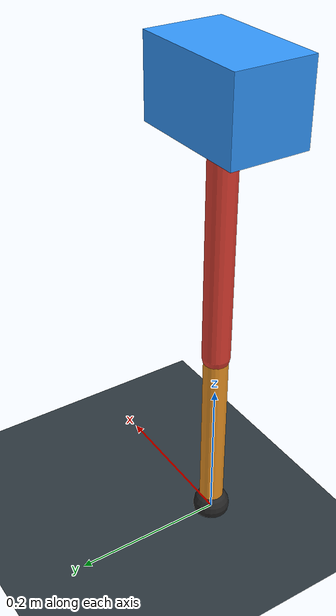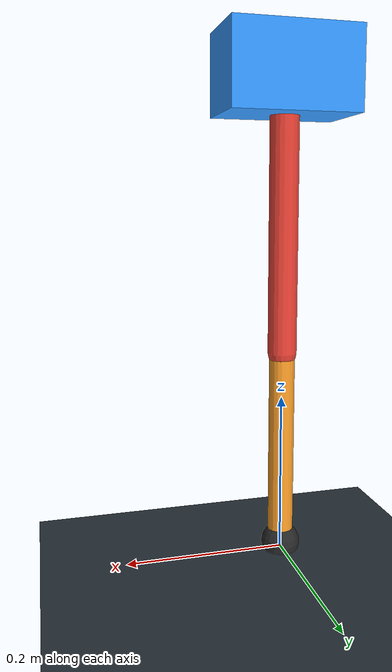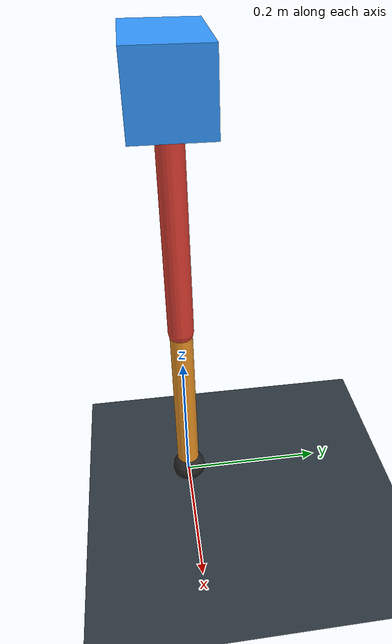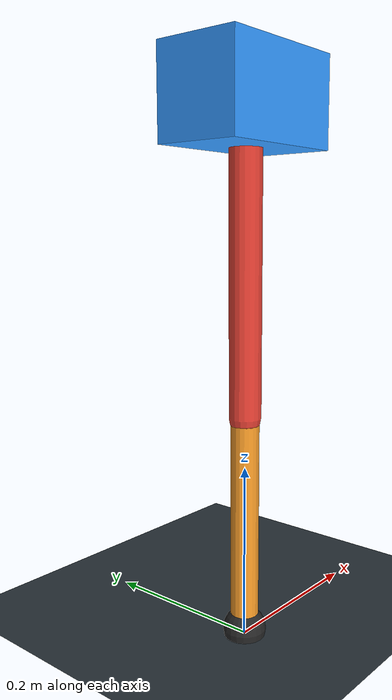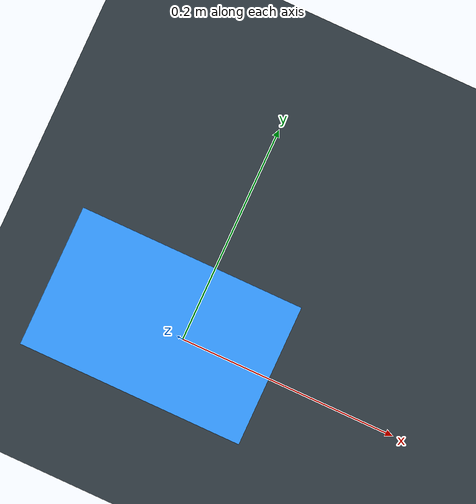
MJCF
<mujoco model="single_axis_two_bar">
  <compiler angle="radian" inertiafromgeom="true"/>
  <option timestep="0.001" integrator="implicitfast" gravity="0 0 -9.81"/>
  <default>
    <joint damping="0.08"/>
    <geom friction="1.2 0.01 0.0001" condim="3"/>
  </default>
  <worldbody>
    <geom name="floor" type="plane" size="5 5 0.1" rgba="0.18 0.22 0.25 1"/>
    <body name="carriage" pos="0 0 0.5984814071651181">
      <joint name="pole_slide" type="slide" axis="0 0 1"/>
      <geom name="payload" type="box" size="0.08 0.05 0.05" mass="3.7129781774827557" rgba="0.2 0.6 1 1"/>
      <body name="thigh" pos="0 0 0">
        <joint name="hip" type="hinge" axis="0 1 0"/>
        <geom name="thigh_link" type="capsule" fromto="0 0 0 0 0 -0.3407944015719086" size="0.018" mass="0.2428205143206916" rgba="0.9 0.25 0.2 1"/>
        <body name="shank" pos="0 0 -0.3407944015719086">
          <joint name="knee" type="hinge" axis="0 1 0"/>
          <geom name="shank_link" type="capsule" fromto="0 0 0 0 0 -0.2504235439591409" size="0.016" mass="0.17843008412606878" rgba="0.95 0.6 0.15 1"/>
          <geom name="foot" type="sphere" pos="0 0 -0.2504235439591409" size="0.025" mass="0.03" rgba="0.15 0.15 0.15 1"/>
          <site name="toe" pos="0 0 -0.2504235439591409" size="0.008"/>
        </body>
      </body>
    </body>
  </worldbody>
  <actuator>
    <motor name="hip_motor" joint="hip" ctrlrange="-40.13076517327354 40.13076517327354"/>
    <motor name="knee_motor" joint="knee" ctrlrange="-160.7187685914948 160.7187685914948"/>
  </actuator>
</mujoco>
